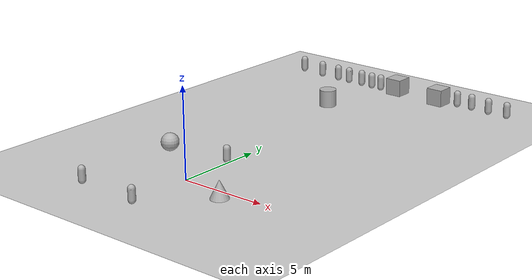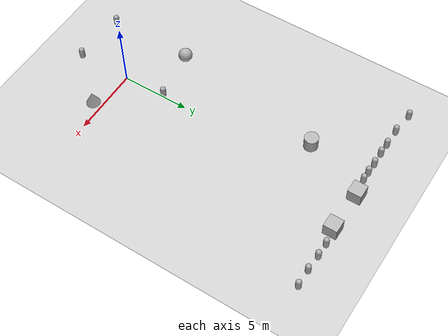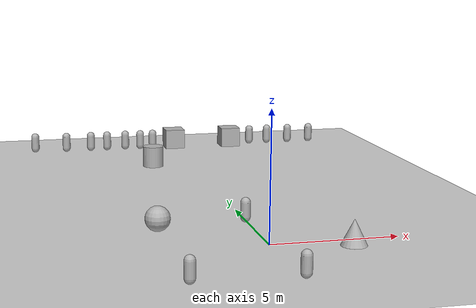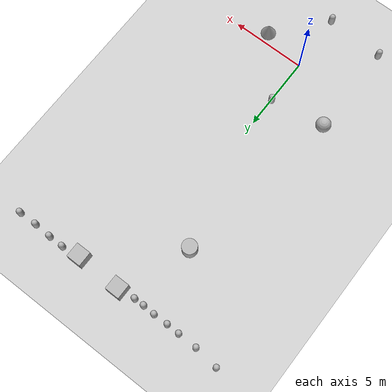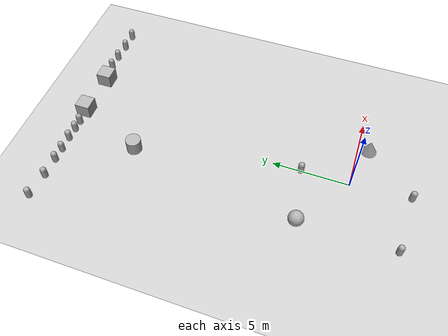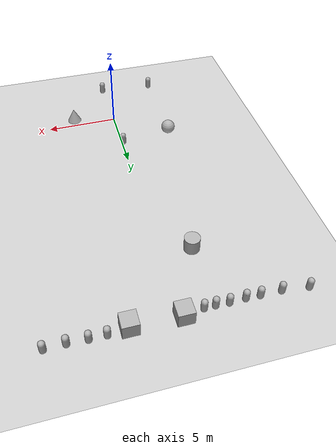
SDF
<sdf version="1.10">
 <world name="empty">
  <physics name="1ms" type="ignored">
   <max_step_size>0.001</max_step_size>
   <real_time_factor>1</real_time_factor>
   <real_time_update_rate>1000</real_time_update_rate>
  </physics>
  <plugin name="gz::sim::systems::Physics" filename="gz-sim-physics-system"/>
  <plugin name="gz::sim::systems::UserCommands" filename="gz-sim-user-commands-system"/>
  <plugin name="gz::sim::systems::SceneBroadcaster" filename="gz-sim-scene-broadcaster-system"/>
  <plugin name="gz::sim::systems::Sensors" filename="gz-sim-sensors-system">
   <render_engine>ogre2</render_engine>
  </plugin>
  <plugin name="gz::sim::systems::Contact" filename="gz-sim-contact-system"/>
  <gravity>0 0 -9.8000000000000007</gravity>
  <magnetic_field>5.5644999999999998e-06 2.2875799999999999e-05 -4.2388400000000002e-05</magnetic_field>
  <atmosphere type="adiabatic"/>
  <scene>
   <ambient>0.400000006 0.400000006 0.400000006 1</ambient>
   <background>0.699999988 0.699999988 0.699999988 1</background>
   <shadows>true</shadows>
  </scene>
  <model name="ground_plane">
   <static>true</static>
   <link name="link">
    <collision name="collision">
     <geometry><plane><normal>0 0 1</normal><size>100 100</size></plane></geometry>
    </collision>
    <visual name="visual">
     <geometry><plane><normal>0 0 1</normal><size>100 100</size></plane></geometry>
     <material>
      <ambient>0.800000012 0.800000012 0.800000012 1</ambient>
      <diffuse>0.800000012 0.800000012 0.800000012 1</diffuse>
      <specular>0.800000012 0.800000012 0.800000012 1</specular>
     </material>
    </visual>
    <inertial>
     <mass>1</mass>
     <inertia><ixx>1</ixx><ixy>0</ixy><ixz>0</ixz><iyy>1</iyy><iyz>0</iyz><izz>1</izz></inertia>
    </inertial>
   </link>
  </model>
  <model name="capsule">
   <pose>-3.7130200862884521 -3.6050710678100586 0.499999999902001 0 0 0</pose>
   <link name="capsule_link">
    <inertial>
     <inertia>
      <ixx>0.074153999999999998</ixx>
      <ixy>0</ixy>
      <ixz>0</ixz>
      <iyy>0.074153999999999998</iyy>
      <iyz>0</iyz>
      <izz>0.018769000000000001</izz>
     </inertia>
     <mass>1</mass>
    </inertial>
    <collision name="capsule_collision">
     <geometry>
      <capsule><radius>0.20000000000000001</radius><length>0.59999999999999998</length></capsule>
     </geometry>
    </collision>
    <visual name="capsule_visual">
     <geometry>
      <capsule><radius>0.20000000000000001</radius><length>0.59999999999999998</length></capsule>
     </geometry>
     <material>
      <ambient>0.300000012 0.300000012 0.300000012 1</ambient>
      <diffuse>0.699999988 0.699999988 0.699999988 1</diffuse>
      <specular>1 1 1 1</specular>
     </material>
    </visual>
   </link>
   <static>false</static>
  </model>
  <model name="sphere">
   <pose>-3.6724588750257747 2.5767556525929947 0.499999999902001 0 0 0</pose>
   <link name="sphere_link">
    <inertial>
     <inertia>
      <ixx>0.10000000000000001</ixx>
      <ixy>0</ixy>
      <ixz>0</ixz>
      <iyy>0.10000000000000001</iyy>
      <iyz>0</iyz>
      <izz>0.10000000000000001</izz>
     </inertia>
     <mass>1</mass>
    </inertial>
    <collision name="sphere_collision"><geometry><sphere><radius>0.5</radius></sphere></geometry></collision>
    <visual name="sphere_visual">
     <geometry><sphere><radius>0.5</radius></sphere></geometry>
     <material>
      <ambient>0.300000012 0.300000012 0.300000012 1</ambient>
      <diffuse>0.699999988 0.699999988 0.699999988 1</diffuse>
      <specular>1 1 1 1</specular>
     </material>
    </visual>
   </link>
   <static>false</static>
  </model>
  <model name="cone">
   <pose>2.989963765157619 -0.70354598532660595 0.49999999553651692 3.4340538420580203e-09 -9.0946273292713742e-09 -1.5238244452285792e-06</pose>
   <link name="cone_link">
    <inertial>
     <inertia>
      <ixx>0.074999999999999997</ixx>
      <ixy>0</ixy>
      <ixz>0</ixz>
      <iyy>0.074999999999999997</iyy>
      <iyz>0</iyz>
      <izz>0.074999999999999997</izz>
     </inertia>
     <mass>1</mass>
    </inertial>
    <collision name="cone_collision">
     <geometry><cone><radius>0.5</radius><length>1</length></cone></geometry>
    </collision>
    <visual name="cone_visual">
     <geometry><cone><radius>0.5</radius><length>1</length></cone></geometry>
     <material>
      <ambient>0.300000012 0.300000012 0.300000012 1</ambient>
      <diffuse>0.699999988 0.699999988 0.699999988 1</diffuse>
      <specular>1 1 1 1</specular>
     </material>
    </visual>
   </link>
   <static>false</static>
  </model>
  <model name="box">
   <pose>3.0457141399383114 18.392530441284563 0.49999899675572507 7.5649037273406055e-11 8.4344596699633185e-12 1.4304099522647524e-06</pose>
   <link name="box_link">
    <inertial>
     <inertia><ixx>0.16666</ixx><ixy>0</ixy><ixz>0</ixz><iyy>0.16666</iyy><iyz>0</iyz><izz>0.16666</izz></inertia>
     <mass>1</mass>
    </inertial>
    <collision name="box_collision"><geometry><box><size>1 1 1</size></box></geometry></collision>
    <visual name="box_visual">
     <geometry><box><size>1 1 1</size></box></geometry>
     <material>
      <ambient>0.300000012 0.300000012 0.300000012 1</ambient>
      <diffuse>0.699999988 0.699999988 0.699999988 1</diffuse>
      <specular>1 1 1 1</specular>
     </material>
    </visual>
   </link>
   <static>false</static>
  </model>
  <model name="capsule_0">
   <pose>-0.062116910319596208 3.1497468775291697 0.499999999902001 0 0 0</pose>
   <link name="capsule_link">
    <inertial>
     <inertia>
      <ixx>0.074153999999999998</ixx>
      <ixy>0</ixy>
      <ixz>0</ixz>
      <iyy>0.074153999999999998</iyy>
      <iyz>0</iyz>
      <izz>0.018769000000000001</izz>
     </inertia>
     <mass>1</mass>
    </inertial>
    <collision name="capsule_collision">
     <geometry>
      <capsule><radius>0.20000000000000001</radius><length>0.59999999999999998</length></capsule>
     </geometry>
    </collision>
    <visual name="capsule_visual">
     <geometry>
      <capsule><radius>0.20000000000000001</radius><length>0.59999999999999998</length></capsule>
     </geometry>
     <material>
      <ambient>0.300000012 0.300000012 0.300000012 1</ambient>
      <diffuse>0.699999988 0.699999988 0.699999988 1</diffuse>
      <specular>1 1 1 1</specular>
     </material>
    </visual>
   </link>
   <static>false</static>
  </model>
  <model name="capsule_1">
   <pose>0.13750707830176179 -3.829824897996196 0.499999999902001 0 0 0</pose>
   <link name="capsule_link">
    <inertial>
     <inertia>
      <ixx>0.074153999999999998</ixx>
      <ixy>0</ixy>
      <ixz>0</ixz>
      <iyy>0.074153999999999998</iyy>
      <iyz>0</iyz>
      <izz>0.018769000000000001</izz>
     </inertia>
     <mass>1</mass>
    </inertial>
    <collision name="capsule_collision">
     <geometry>
      <capsule><radius>0.20000000000000001</radius><length>0.59999999999999998</length></capsule>
     </geometry>
    </collision>
    <visual name="capsule_visual">
     <geometry>
      <capsule><radius>0.20000000000000001</radius><length>0.59999999999999998</length></capsule>
     </geometry>
     <material>
      <ambient>0.300000012 0.300000012 0.300000012 1</ambient>
      <diffuse>0.699999988 0.699999988 0.699999988 1</diffuse>
      <specular>1 1 1 1</specular>
     </material>
    </visual>
   </link>
   <static>false</static>
  </model>
  <model name="cylinder">
   <pose>-1.8842999935150146 13.988702774047852 0.49999899681693183 -2.6652408311947103e-20 4.5897901421099532e-19 1.6689960643868981e-21</pose>
   <link name="cylinder_link">
    <inertial>
     <inertia>
      <ixx>0.14580000000000001</ixx>
      <ixy>0</ixy>
      <ixz>0</ixz>
      <iyy>0.14580000000000001</iyy>
      <iyz>0</iyz>
      <izz>0.125</izz>
     </inertia>
     <mass>1</mass>
    </inertial>
    <collision name="cylinder_collision">
     <geometry><cylinder><radius>0.5</radius><length>1</length></cylinder></geometry>
    </collision>
    <visual name="cylinder_visual">
     <geometry><cylinder><radius>0.5</radius><length>1</length></cylinder></geometry>
     <material>
      <ambient>0.300000012 0.300000012 0.300000012 1</ambient>
      <diffuse>0.699999988 0.699999988 0.699999988 1</diffuse>
      <specular>1 1 1 1</specular>
     </material>
    </visual>
   </link>
   <static>false</static>
  </model>
  <model name="capsule_2">
   <pose>-1.1744078438431966 18.358200317475355 0.499999999902001 0 0 0</pose>
   <link name="capsule_link">
    <inertial>
     <inertia>
      <ixx>0.074153999999999998</ixx>
      <ixy>0</ixy>
      <ixz>0</ixz>
      <iyy>0.074153999999999998</iyy>
      <iyz>0</iyz>
      <izz>0.018769000000000001</izz>
     </inertia>
     <mass>1</mass>
    </inertial>
    <collision name="capsule_collision">
     <geometry>
      <capsule><radius>0.20000000000000001</radius><length>0.59999999999999998</length></capsule>
     </geometry>
    </collision>
    <visual name="capsule_visual">
     <geometry>
      <capsule><radius>0.20000000000000001</radius><length>0.59999999999999998</length></capsule>
     </geometry>
     <material>
      <ambient>0.300000012 0.300000012 0.300000012 1</ambient>
      <diffuse>0.699999988 0.699999988 0.699999988 1</diffuse>
      <specular>1 1 1 1</specular>
     </material>
    </visual>
   </link>
   <static>false</static>
  </model>
  <model name="capsule_2_1">
   <pose>-1.8505389739985083 18.351597981903431 0.499999999902001 0 0 0</pose>
   <link name="capsule_link">
    <inertial>
     <inertia>
      <ixx>0.074153999999999998</ixx>
      <ixy>0</ixy>
      <ixz>0</ixz>
      <iyy>0.074153999999999998</iyy>
      <iyz>0</iyz>
      <izz>0.018769000000000001</izz>
     </inertia>
     <mass>1</mass>
    </inertial>
    <collision name="capsule_collision">
     <geometry>
      <capsule><radius>0.20000000000000001</radius><length>0.59999999999999998</length></capsule>
     </geometry>
    </collision>
    <visual name="capsule_visual">
     <geometry>
      <capsule><radius>0.20000000000000001</radius><length>0.59999999999999998</length></capsule>
     </geometry>
     <material>
      <ambient>0.300000012 0.300000012 0.300000012 1</ambient>
      <diffuse>0.699999988 0.699999988 0.699999988 1</diffuse>
      <specular>1 1 1 1</specular>
     </material>
    </visual>
   </link>
   <static>false</static>
  </model>
  <model name="capsule_2_2">
   <pose>-2.6544801793811721 18.381919192859243 0.499999999902001 0 0 0</pose>
   <link name="capsule_link">
    <inertial>
     <inertia>
      <ixx>0.074153999999999998</ixx>
      <ixy>0</ixy>
      <ixz>0</ixz>
      <iyy>0.074153999999999998</iyy>
      <iyz>0</iyz>
      <izz>0.018769000000000001</izz>
     </inertia>
     <mass>1</mass>
    </inertial>
    <collision name="capsule_collision">
     <geometry>
      <capsule><radius>0.20000000000000001</radius><length>0.59999999999999998</length></capsule>
     </geometry>
    </collision>
    <visual name="capsule_visual">
     <geometry>
      <capsule><radius>0.20000000000000001</radius><length>0.59999999999999998</length></capsule>
     </geometry>
     <material>
      <ambient>0.300000012 0.300000012 0.300000012 1</ambient>
      <diffuse>0.699999988 0.699999988 0.699999988 1</diffuse>
      <specular>1 1 1 1</specular>
     </material>
    </visual>
   </link>
   <static>false</static>
  </model>
  <model name="capsule_2_3">
   <pose>-3.6281687934578501 18.360885744226785 0.499999999902001 0 0 0</pose>
   <link name="capsule_link">
    <inertial>
     <inertia>
      <ixx>0.074153999999999998</ixx>
      <ixy>0</ixy>
      <ixz>0</ixz>
      <iyy>0.074153999999999998</iyy>
      <iyz>0</iyz>
      <izz>0.018769000000000001</izz>
     </inertia>
     <mass>1</mass>
    </inertial>
    <collision name="capsule_collision">
     <geometry>
      <capsule><radius>0.20000000000000001</radius><length>0.59999999999999998</length></capsule>
     </geometry>
    </collision>
    <visual name="capsule_visual">
     <geometry>
      <capsule><radius>0.20000000000000001</radius><length>0.59999999999999998</length></capsule>
     </geometry>
     <material>
      <ambient>0.300000012 0.300000012 0.300000012 1</ambient>
      <diffuse>0.699999988 0.699999988 0.699999988 1</diffuse>
      <specular>1 1 1 1</specular>
     </material>
    </visual>
   </link>
   <static>false</static>
  </model>
  <model name="capsule_2_4">
   <pose>-4.493501868292622 18.378251973693871 0.499999999902001 0 0 0</pose>
   <link name="capsule_link">
    <inertial>
     <inertia>
      <ixx>0.074153999999999998</ixx>
      <ixy>0</ixy>
      <ixz>0</ixz>
      <iyy>0.074153999999999998</iyy>
      <iyz>0</iyz>
      <izz>0.018769000000000001</izz>
     </inertia>
     <mass>1</mass>
    </inertial>
    <collision name="capsule_collision">
     <geometry>
      <capsule><radius>0.20000000000000001</radius><length>0.59999999999999998</length></capsule>
     </geometry>
    </collision>
    <visual name="capsule_visual">
     <geometry>
      <capsule><radius>0.20000000000000001</radius><length>0.59999999999999998</length></capsule>
     </geometry>
     <material>
      <ambient>0.300000012 0.300000012 0.300000012 1</ambient>
      <diffuse>0.699999988 0.699999988 0.699999988 1</diffuse>
      <specular>1 1 1 1</specular>
     </material>
    </visual>
   </link>
   <static>false</static>
  </model>
  <model name="box_0">
   <pose>0.0050657519926229355 18.484449632872821 0.49999999990199806 6.2287739151293738e-22 9.3279666454713669e-22 -3.6315533669320137e-22</pose>
   <link name="box_link">
    <inertial>
     <inertia><ixx>0.16666</ixx><ixy>0</ixy><ixz>0</ixz><iyy>0.16666</iyy><iyz>0</iyz><izz>0.16666</izz></inertia>
     <mass>1</mass>
    </inertial>
    <collision name="box_collision"><geometry><box><size>1 1 1</size></box></geometry></collision>
    <visual name="box_visual">
     <geometry><box><size>1 1 1</size></box></geometry>
     <material>
      <ambient>0.300000012 0.300000012 0.300000012 1</ambient>
      <diffuse>0.699999988 0.699999988 0.699999988 1</diffuse>
      <specular>1 1 1 1</specular>
     </material>
    </visual>
   </link>
   <static>false</static>
  </model>
  <model name="capsule_2_5">
   <pose>4.2645426082303155 18.582635744553105 0.499999999902001 0 0 0</pose>
   <link name="capsule_link">
    <inertial>
     <inertia>
      <ixx>0.074153999999999998</ixx>
      <ixy>0</ixy>
      <ixz>0</ixz>
      <iyy>0.074153999999999998</iyy>
      <iyz>0</iyz>
      <izz>0.018769000000000001</izz>
     </inertia>
     <mass>1</mass>
    </inertial>
    <collision name="capsule_collision">
     <geometry>
      <capsule><radius>0.20000000000000001</radius><length>0.59999999999999998</length></capsule>
     </geometry>
    </collision>
    <visual name="capsule_visual">
     <geometry>
      <capsule><radius>0.20000000000000001</radius><length>0.59999999999999998</length></capsule>
     </geometry>
     <material>
      <ambient>0.300000012 0.300000012 0.300000012 1</ambient>
      <diffuse>0.699999988 0.699999988 0.699999988 1</diffuse>
      <specular>1 1 1 1</specular>
     </material>
    </visual>
   </link>
   <static>false</static>
  </model>
  <model name="capsule_2_6">
   <pose>5.2650169396700903 18.57826846305392 0.499999999902001 0 0 0</pose>
   <link name="capsule_link">
    <inertial>
     <inertia>
      <ixx>0.074153999999999998</ixx>
      <ixy>0</ixy>
      <ixz>0</ixz>
      <iyy>0.074153999999999998</iyy>
      <iyz>0</iyz>
      <izz>0.018769000000000001</izz>
     </inertia>
     <mass>1</mass>
    </inertial>
    <collision name="capsule_collision">
     <geometry>
      <capsule><radius>0.20000000000000001</radius><length>0.59999999999999998</length></capsule>
     </geometry>
    </collision>
    <visual name="capsule_visual">
     <geometry>
      <capsule><radius>0.20000000000000001</radius><length>0.59999999999999998</length></capsule>
     </geometry>
     <material>
      <ambient>0.300000012 0.300000012 0.300000012 1</ambient>
      <diffuse>0.699999988 0.699999988 0.699999988 1</diffuse>
      <specular>1 1 1 1</specular>
     </material>
    </visual>
   </link>
   <static>false</static>
  </model>
  <model name="capsule_2_7">
   <pose>6.4367686677079243 18.526098235646813 0.499999999902001 0 0 0</pose>
   <link name="capsule_link">
    <inertial>
     <inertia>
      <ixx>0.074153999999999998</ixx>
      <ixy>0</ixy>
      <ixz>0</ixz>
      <iyy>0.074153999999999998</iyy>
      <iyz>0</iyz>
      <izz>0.018769000000000001</izz>
     </inertia>
     <mass>1</mass>
    </inertial>
    <collision name="capsule_collision">
     <geometry>
      <capsule><radius>0.20000000000000001</radius><length>0.59999999999999998</length></capsule>
     </geometry>
    </collision>
    <visual name="capsule_visual">
     <geometry>
      <capsule><radius>0.20000000000000001</radius><length>0.59999999999999998</length></capsule>
     </geometry>
     <material>
      <ambient>0.300000012 0.300000012 0.300000012 1</ambient>
      <diffuse>0.699999988 0.699999988 0.699999988 1</diffuse>
      <specular>1 1 1 1</specular>
     </material>
    </visual>
   </link>
   <static>false</static>
  </model>
  <model name="capsule_2_8">
   <pose>7.6567763591394904 18.543258882701906 0.499999999902001 0 0 0</pose>
   <link name="capsule_link">
    <inertial>
     <inertia>
      <ixx>0.074153999999999998</ixx>
      <ixy>0</ixy>
      <ixz>0</ixz>
      <iyy>0.074153999999999998</iyy>
      <iyz>0</iyz>
      <izz>0.018769000000000001</izz>
     </inertia>
     <mass>1</mass>
    </inertial>
    <collision name="capsule_collision">
     <geometry>
      <capsule><radius>0.20000000000000001</radius><length>0.59999999999999998</length></capsule>
     </geometry>
    </collision>
    <visual name="capsule_visual">
     <geometry>
      <capsule><radius>0.20000000000000001</radius><length>0.59999999999999998</length></capsule>
     </geometry>
     <material>
      <ambient>0.300000012 0.300000012 0.300000012 1</ambient>
      <diffuse>0.699999988 0.699999988 0.699999988 1</diffuse>
      <specular>1 1 1 1</specular>
     </material>
    </visual>
   </link>
   <static>false</static>
  </model>
  <model name="capsule_2_9">
   <pose>-5.7820267139350516 18.397717848950208 0.499999999902001 0 0 0</pose>
   <link name="capsule_link">
    <inertial>
     <inertia>
      <ixx>0.074153999999999998</ixx>
      <ixy>0</ixy>
      <ixz>0</ixz>
      <iyy>0.074153999999999998</iyy>
      <iyz>0</iyz>
      <izz>0.018769000000000001</izz>
     </inertia>
     <mass>1</mass>
    </inertial>
    <collision name="capsule_collision">
     <geometry>
      <capsule><radius>0.20000000000000001</radius><length>0.59999999999999998</length></capsule>
     </geometry>
    </collision>
    <visual name="capsule_visual">
     <geometry>
      <capsule><radius>0.20000000000000001</radius><length>0.59999999999999998</length></capsule>
     </geometry>
     <material>
      <ambient>0.300000012 0.300000012 0.300000012 1</ambient>
      <diffuse>0.699999988 0.699999988 0.699999988 1</diffuse>
      <specular>1 1 1 1</specular>
     </material>
    </visual>
   </link>
   <static>false</static>
  </model>
  <model name="capsule_2_10">
   <pose>-7.4020411816185021 18.577261641850605 0.499999999902001 0 0 0</pose>
   <link name="capsule_link">
    <inertial>
     <inertia>
      <ixx>0.074153999999999998</ixx>
      <ixy>0</ixy>
      <ixz>0</ixz>
      <iyy>0.074153999999999998</iyy>
      <iyz>0</iyz>
      <izz>0.018769000000000001</izz>
     </inertia>
     <mass>1</mass>
    </inertial>
    <collision name="capsule_collision">
     <geometry>
      <capsule><radius>0.20000000000000001</radius><length>0.59999999999999998</length></capsule>
     </geometry>
    </collision>
    <visual name="capsule_visual">
     <geometry>
      <capsule><radius>0.20000000000000001</radius><length>0.59999999999999998</length></capsule>
     </geometry>
     <material>
      <ambient>0.300000012 0.300000012 0.300000012 1</ambient>
      <diffuse>0.699999988 0.699999988 0.699999988 1</diffuse>
      <specular>1 1 1 1</specular>
     </material>
    </visual>
   </link>
   <static>false</static>
  </model>
  <light name="sun" type="directional">
   <pose>0 0 10 0 0 0</pose>
   <intensity>1</intensity>
   <direction>-0.5 0.10000000000000001 -0.90000000000000002</direction>
   <diffuse>0.800000012 0.800000012 0.800000012 1</diffuse>
   <specular>0.200000003 0.200000003 0.200000003 1</specular>
   <attenuation>
    <range>1000</range>
    <linear>0.01</linear>
    <constant>0.90000000000000002</constant>
    <quadratic>0.001</quadratic>
   </attenuation>
   <spot><inner_angle>0</inner_angle><outer_angle>0</outer_angle><falloff>0</falloff></spot>
  </light>
 </world>
</sdf>
